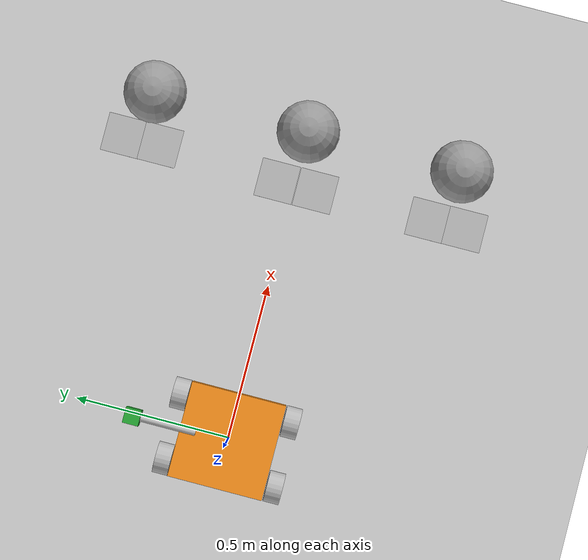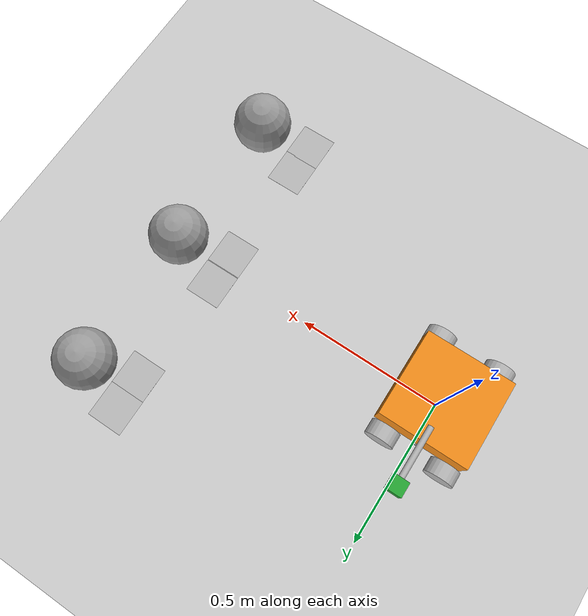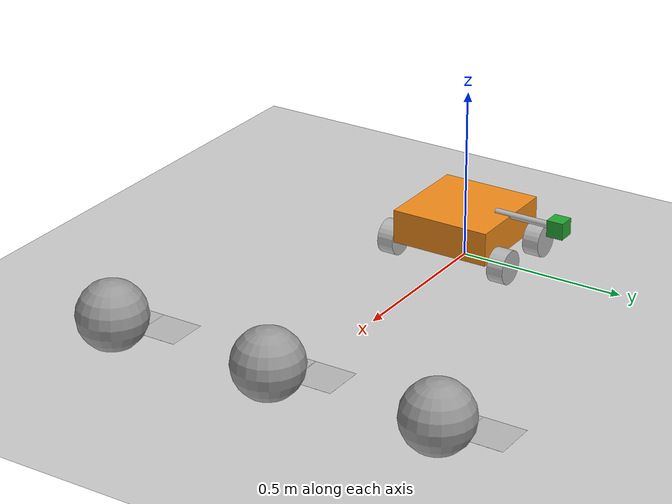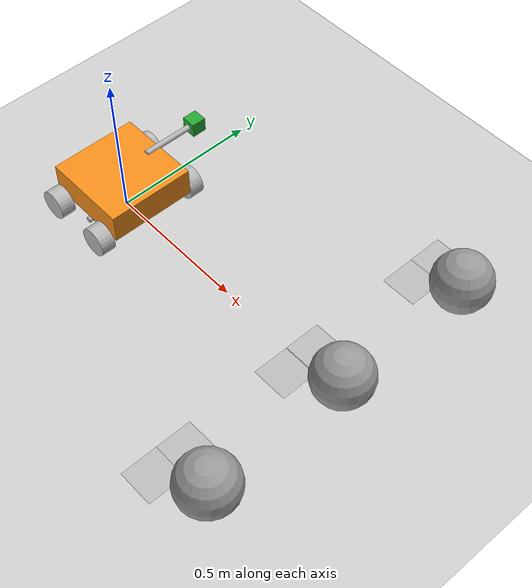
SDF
<sdf version="1.6">
 <world name="default">
  <model name="ground_plane">
   <static>1</static>
   <link name="link">
    <collision name="collision">
     <geometry><plane><normal>0 0 1</normal><size>100 100</size></plane></geometry>
     <surface><friction><ode><mu>100</mu><mu2>50</mu2></ode></friction></surface>
    </collision>
    <visual name="visual">
     <cast_shadows>0</cast_shadows>
     <geometry><plane><normal>0 0 1</normal><size>100 100</size></plane></geometry>
     <material>
      <script><uri>file://media/materials/scripts/gazebo.material</uri><name>Gazebo/Grey</name></script>
     </material>
    </visual>
   </link>
  </model>
  <light name="sun" type="directional">
   <pose>0 0 10 0 -0 0</pose>
   <diffuse>0.8 0.8 0.8 1</diffuse>
   <specular>0.1 0.1 0.1 1</specular>
   <attenuation>
    <range>1000</range>
    <constant>0.9</constant>
    <linear>0.01</linear>
    <quadratic>0.001</quadratic>
   </attenuation>
   <direction>-0.5 0.5 -1</direction>
  </light>
  <gravity>0 0 -9.8</gravity>
  <magnetic_field>6e-06 2.3e-05 -4.2e-05</magnetic_field>
  <atmosphere type="adiabatic"/>
  <physics name="default_physics" default="0" type="ode">
   <max_step_size>0.001</max_step_size>
   <real_time_factor>1</real_time_factor>
   <real_time_update_rate>1000</real_time_update_rate>
  </physics>
  <scene><ambient>0.4 0.4 0.4 1</ambient><background>0.7 0.7 0.7 1</background><shadows>1</shadows></scene>
  <spherical_coordinates>
   <surface_model>EARTH_WGS84</surface_model>
   <latitude_deg>0</latitude_deg>
   <longitude_deg>0</longitude_deg>
   <elevation>0</elevation>
   <heading_deg>0</heading_deg>
  </spherical_coordinates>
  <model name="mybot">
   <link name="chassis">
    <inertial>
     <pose>0 0.018438 0.063669 0 -0 0</pose>
     <mass>11.01</mass>
     <inertia>
      <ixx>1.05763</ixx>
      <ixy>0</ixy>
      <ixz>0</ixz>
      <iyy>2.02047</iyy>
      <iyz>-0.0273751</iyz>
      <izz>0.237158</izz>
     </inertia>
    </inertial>
    <collision name="chassis_fixed_joint_lump__collision_collision">
     <pose>0 0 0.05 0 -0 0</pose>
     <geometry><box><size>0.3 0.3 0.1</size></box></geometry>
    </collision>
    <collision name="chassis_fixed_joint_lump__collision_collision_1">
     <pose>0.1 0.2 0.1 3.14159 1.57079 3.14159</pose>
     <geometry><cylinder><length>0.2</length><radius>0.01</radius></cylinder></geometry>
    </collision>
    <collision name="chassis_fixed_joint_lump__camera_collision_2">
     <pose>0 0.3 0.1 3.14159 1.57079 -1.57079</pose>
     <geometry><box><size>0.05 0.05 0.05</size></box></geometry>
    </collision>
    <visual name="chassis_visual_visual">
     <pose>0 0 0.05 0 -0 0</pose>
     <geometry><box><size>0.3 0.3 0.1</size></box></geometry>
     <material>
      <script><name>Gazebo/Orange</name><uri>file://media/materials/scripts/gazebo.material</uri></script>
     </material>
    </visual>
    <visual name="chassis_fixed_joint_lump__camera_pole_visual_1">
     <pose>0 0.2 0.1 1.57075 -0 0</pose>
     <geometry><cylinder><length>0.2</length><radius>0.01</radius></cylinder></geometry>
    </visual>
    <visual name="chassis_fixed_joint_lump__camera_visual_2">
     <pose>0 0.3 0.1 3.14159 1.57079 -1.57079</pose>
     <geometry><box><size>0.05 0.05 0.05</size></box></geometry>
     <material>
      <script><name>Gazebo/Green</name><uri>file://media/materials/scripts/gazebo.material</uri></script>
     </material>
    </visual>
    <sensor name="camera1" type="camera">
     <update_rate>30</update_rate>
     <camera name="chassis">
      <horizontal_fov>1.39626</horizontal_fov>
      <image><width>800</width><height>800</height><format>R8G8B8</format></image>
      <clip><near>0.02</near><far>300</far></clip>
     </camera>
     <plugin name="camera_controller" filename="libgazebo_ros_camera.so">
      <alwaysOn>true</alwaysOn>
      <updateRate>0.0</updateRate>
      <cameraName>mybot/camera1</cameraName>
      <imageTopicName>image_raw</imageTopicName>
      <cameraInfoTopicName>camera_info</cameraInfoTopicName>
      <frameName>camera</frameName>
      <hackBaseline>0.07</hackBaseline>
      <distortionK1>0.0</distortionK1>
      <distortionK2>0.0</distortionK2>
      <distortionK3>0.0</distortionK3>
      <distortionT1>0.0</distortionT1>
      <distortionT2>0.0</distortionT2>
      <robotNamespace>/mybot/</robotNamespace>
     </plugin>
     <pose>0 0.3 0.1 3.14159 1.57079 -1.57079</pose>
    </sensor>
   </link>
   <link name="gripper_pole">
    <pose>0 0 -0.03 0 -0 0</pose>
    <inertial>
     <pose>0 0 0.1 0 1.57075 0</pose>
     <mass>5</mass>
     <inertia><ixx>0.5</ixx><ixy>0</ixy><ixz>0</ixz><iyy>1</iyy><iyz>0</iyz><izz>0.1</izz></inertia>
    </inertial>
    <collision name="gripper_pole_fixed_joint_lump__collision_collision">
     <pose>0 0 0 1.57075 -0 0</pose>
     <geometry><cylinder><length>0.3</length><radius>0.01</radius></cylinder></geometry>
    </collision>
    <visual name="gripper_pole_visual">
     <pose>0 0 0 1.57075 -0 0</pose>
     <geometry><cylinder><length>0.3</length><radius>0.01</radius></cylinder></geometry>
    </visual>
   </link>
   <joint name="gripper_extension" type="prismatic">
    <child>gripper_pole</child>
    <parent>chassis</parent>
    <axis>
     <xyz>0 1 0</xyz>
     <limit><lower>0</lower><upper>0.3</upper><effort>1000</effort><velocity>10</velocity></limit>
     <dynamics><spring_reference>0</spring_reference><spring_stiffness>0</spring_stiffness></dynamics>
     <use_parent_model_frame>1</use_parent_model_frame>
    </axis>
   </joint>
   <link name="left_back_wheel">
    <pose>-0.11 0.18 -0.01 0 -0 0</pose>
    <inertial>
     <pose>0 0 0 -0 1.5707 1.5707</pose>
     <mass>5</mass>
     <inertia><ixx>1</ixx><ixy>0</ixy><ixz>0</ixz><iyy>1</iyy><iyz>0</iyz><izz>1</izz></inertia>
    </inertial>
    <collision name="left_back_wheel_fixed_joint_lump__collision_collision">
     <pose>0 0 0 3.14159 1.57079 -1.57089</pose>
     <geometry><cylinder><length>0.05</length><radius>0.05</radius></cylinder></geometry>
    </collision>
    <visual name="left_back_wheel_fixed_joint_lump__left_wheel_visual_visual">
     <pose>0 0 0 3.14159 1.57079 -1.57089</pose>
     <geometry><cylinder><length>0.05</length><radius>0.05</radius></cylinder></geometry>
    </visual>
   </link>
   <joint name="left_back_wheel_hinge" type="revolute">
    <child>left_back_wheel</child>
    <parent>chassis</parent>
    <axis>
     <xyz>0 1 0</xyz>
     <limit><lower>-1e+16</lower><upper>1e+16</upper></limit>
     <dynamics><spring_reference>0</spring_reference><spring_stiffness>0</spring_stiffness></dynamics>
     <use_parent_model_frame>1</use_parent_model_frame>
    </axis>
   </joint>
   <link name="left_wheel">
    <pose>0.1 0.18 -0.01 0 -0 0</pose>
    <inertial>
     <pose>0 0 0 -0 1.5707 1.5707</pose>
     <mass>5</mass>
     <inertia><ixx>1</ixx><ixy>0</ixy><ixz>0</ixz><iyy>1</iyy><iyz>0</iyz><izz>1</izz></inertia>
    </inertial>
    <collision name="left_wheel_fixed_joint_lump__collision_collision">
     <pose>0 0 0 3.14159 1.57079 -1.57089</pose>
     <geometry><cylinder><length>0.05</length><radius>0.05</radius></cylinder></geometry>
    </collision>
    <visual name="left_wheel_visual_visual">
     <pose>0 0 0 3.14159 1.57079 -1.57089</pose>
     <geometry><cylinder><length>0.05</length><radius>0.05</radius></cylinder></geometry>
    </visual>
   </link>
   <joint name="left_wheel_hinge" type="revolute">
    <child>left_wheel</child>
    <parent>chassis</parent>
    <axis>
     <xyz>0 1 0</xyz>
     <limit><lower>-1e+16</lower><upper>1e+16</upper></limit>
     <dynamics><spring_reference>0</spring_reference><spring_stiffness>0</spring_stiffness></dynamics>
     <use_parent_model_frame>1</use_parent_model_frame>
    </axis>
   </joint>
   <link name="right_back_wheel">
    <pose>-0.11 -0.18 -0.01 0 -0 0</pose>
    <inertial>
     <pose>0 0 0 -0 1.5707 1.5707</pose>
     <mass>5</mass>
     <inertia><ixx>1</ixx><ixy>0</ixy><ixz>0</ixz><iyy>1</iyy><iyz>0</iyz><izz>1</izz></inertia>
    </inertial>
    <collision name="right_back_wheel_fixed_joint_lump__collision_collision">
     <pose>0 0 0 3.14159 1.57079 -1.57089</pose>
     <geometry><cylinder><length>0.05</length><radius>0.05</radius></cylinder></geometry>
    </collision>
    <visual name="right_back_wheel_fixed_joint_lump__right_wheel_visual_visual">
     <pose>0 0 0 3.14159 1.57079 -1.57089</pose>
     <geometry><cylinder><length>0.05</length><radius>0.05</radius></cylinder></geometry>
    </visual>
   </link>
   <joint name="right_back_wheel_hinge" type="revolute">
    <child>right_back_wheel</child>
    <parent>chassis</parent>
    <axis>
     <xyz>0 1 0</xyz>
     <limit><lower>-1e+16</lower><upper>1e+16</upper></limit>
     <dynamics><spring_reference>0</spring_reference><spring_stiffness>0</spring_stiffness></dynamics>
     <use_parent_model_frame>1</use_parent_model_frame>
    </axis>
   </joint>
   <link name="right_wheel">
    <pose>0.1 -0.18 -0.01 0 -0 0</pose>
    <inertial>
     <pose>0 0 0 -0 1.5707 1.5707</pose>
     <mass>5</mass>
     <inertia><ixx>1</ixx><ixy>0</ixy><ixz>0</ixz><iyy>1</iyy><iyz>0</iyz><izz>1</izz></inertia>
    </inertial>
    <collision name="right_wheel_fixed_joint_lump__collision_collision">
     <pose>0 0 0 3.14159 1.57079 -1.57089</pose>
     <geometry><cylinder><length>0.05</length><radius>0.05</radius></cylinder></geometry>
    </collision>
    <visual name="right_wheel_visual_visual">
     <pose>0 0 0 3.14159 1.57079 -1.57089</pose>
     <geometry><cylinder><length>0.05</length><radius>0.05</radius></cylinder></geometry>
    </visual>
   </link>
   <joint name="right_wheel_hinge" type="revolute">
    <child>right_wheel</child>
    <parent>chassis</parent>
    <axis>
     <xyz>0 1 0</xyz>
     <limit><lower>-1e+16</lower><upper>1e+16</upper></limit>
     <dynamics><spring_reference>0</spring_reference><spring_stiffness>0</spring_stiffness></dynamics>
     <use_parent_model_frame>1</use_parent_model_frame>
    </axis>
   </joint>
   <plugin name="gazebo_ros_control" filename="libgazebo_ros_control.so">
    <robotNamespace>/mybot</robotNamespace>
    <robotSimType>gazebo_ros_control/DefaultRobotHWSim</robotSimType>
    <legacyModeNS>true</legacyModeNS>
   </plugin>
   <static>0</static>
   <plugin name="differential_drive_controller" filename="libgazebo_ros_diff_drive.so">
    <legacyMode>false</legacyMode>
    <alwaysOn>true</alwaysOn>
    <updateRate>20</updateRate>
    <leftJoint>left_wheel_hinge</leftJoint>
    <rightJoint>right_wheel_hinge</rightJoint>
    <wheelDiameter>0.1</wheelDiameter>
    <torque>20</torque>
    <commandTopic>cmd_vel</commandTopic>
    <odometryTopic>odom</odometryTopic>
    <odometryFrame>odom</odometryFrame>
    <robotBaseFrame>chassis</robotBaseFrame>
    <robotNamespace>/mybot/</robotNamespace>
   </plugin>
   <pose>-5.6e-05 7e-06 0.059999 5e-06 -2e-06 -0.000208</pose>
  </model>
  <model name="unit_sphere_1_0">
   <link name="link">
    <inertial>
     <mass>1</mass>
     <inertia><ixx>0.1</ixx><ixy>0</ixy><ixz>0</ixz><iyy>0.1</iyy><iyz>0</iyz><izz>0.1</izz></inertia>
    </inertial>
    <visual name="visual">
     <geometry><sphere><radius>0.1</radius></sphere></geometry>
     <material>
      <script><name>Gazebo/Grey</name><uri>file://media/materials/scripts/gazebo.material</uri></script>
      <ambient>0.3 0.3 0.3 1</ambient>
      <diffuse>0.7 0.7 0.7 1</diffuse>
      <specular>0.01 0.01 0.01 1</specular>
      <emissive>0 0 0 1</emissive>
      <shader type="vertex"><normal_map>__default__</normal_map></shader>
     </material>
    </visual>
    <collision name="collision">
     <geometry><sphere><radius>0.1</radius></sphere></geometry>
     <surface>
      <friction>
       <ode><mu>1</mu><mu2>1</mu2><fdir1>0 0 0</fdir1><slip1>0</slip1><slip2>0</slip2></ode>
       <torsional>
        <coefficient>1</coefficient>
        <patch_radius>0</patch_radius>
        <surface_radius>0</surface_radius>
        <use_patch_radius>1</use_patch_radius>
        <ode><slip>0</slip></ode>
       </torsional>
      </friction>
      <bounce><restitution_coefficient>0.8</restitution_coefficient><threshold>0</threshold></bounce>
      <contact>
       <collide_without_contact>0</collide_without_contact>
       <collide_without_contact_bitmask>1</collide_without_contact_bitmask>
       <collide_bitmask>1</collide_bitmask>
       <ode>
        <soft_cfm>0</soft_cfm>
        <soft_erp>0.2</soft_erp>
        <kp>1e+13</kp>
        <kd>1</kd>
        <max_vel>10.05</max_vel>
        <min_depth>0</min_depth>
       </ode>
       <bullet>
        <split_impulse>1</split_impulse>
        <split_impulse_penetration_threshold>-0.01</split_impulse_penetration_threshold>
        <soft_cfm>0</soft_cfm>
        <soft_erp>0.2</soft_erp>
        <kp>1e+13</kp>
        <kd>1</kd>
       </bullet>
      </contact>
     </surface>
    </collision>
   </link>
   <static>0</static>
   <pose>1 0.5 0.1 0 -0 0</pose>
  </model>
  <model name="unit_sphere_1_1">
   <link name="link">
    <inertial>
     <mass>1</mass>
     <inertia><ixx>0.1</ixx><ixy>0</ixy><ixz>0</ixz><iyy>0.1</iyy><iyz>0</iyz><izz>0.1</izz></inertia>
    </inertial>
    <visual name="visual">
     <geometry><sphere><radius>0.1</radius></sphere></geometry>
     <material>
      <script><name>Gazebo/Grey</name><uri>file://media/materials/scripts/gazebo.material</uri></script>
      <ambient>0.3 0.3 0.3 1</ambient>
      <diffuse>0.7 0.7 0.7 1</diffuse>
      <specular>0.01 0.01 0.01 1</specular>
      <emissive>0 0 0 1</emissive>
      <shader type="vertex"><normal_map>__default__</normal_map></shader>
     </material>
    </visual>
    <collision name="collision">
     <geometry><sphere><radius>0.1</radius></sphere></geometry>
     <surface>
      <friction>
       <ode><mu>1</mu><mu2>1</mu2><fdir1>0 0 0</fdir1><slip1>0</slip1><slip2>0</slip2></ode>
       <torsional>
        <coefficient>1</coefficient>
        <patch_radius>0</patch_radius>
        <surface_radius>0</surface_radius>
        <use_patch_radius>1</use_patch_radius>
        <ode><slip>0</slip></ode>
       </torsional>
      </friction>
      <bounce><restitution_coefficient>0.8</restitution_coefficient><threshold>0</threshold></bounce>
      <contact>
       <collide_without_contact>0</collide_without_contact>
       <collide_without_contact_bitmask>1</collide_without_contact_bitmask>
       <collide_bitmask>1</collide_bitmask>
       <ode>
        <soft_cfm>0</soft_cfm>
        <soft_erp>0.2</soft_erp>
        <kp>1e+13</kp>
        <kd>1</kd>
        <max_vel>10.05</max_vel>
        <min_depth>0</min_depth>
       </ode>
       <bullet>
        <split_impulse>1</split_impulse>
        <split_impulse_penetration_threshold>-0.01</split_impulse_penetration_threshold>
        <soft_cfm>0</soft_cfm>
        <soft_erp>0.2</soft_erp>
        <kp>1e+13</kp>
        <kd>1</kd>
       </bullet>
      </contact>
     </surface>
    </collision>
   </link>
   <static>0</static>
   <pose>1 0 0.1 0 -0 0</pose>
  </model>
  <model name="unit_sphere_1_2">
   <link name="link">
    <inertial>
     <mass>1</mass>
     <inertia><ixx>0.1</ixx><ixy>0</ixy><ixz>0</ixz><iyy>0.1</iyy><iyz>0</iyz><izz>0.1</izz></inertia>
    </inertial>
    <visual name="visual">
     <geometry><sphere><radius>0.1</radius></sphere></geometry>
     <material>
      <script><name>Gazebo/Grey</name><uri>file://media/materials/scripts/gazebo.material</uri></script>
      <ambient>0.3 0.3 0.3 1</ambient>
      <diffuse>0.7 0.7 0.7 1</diffuse>
      <specular>0.01 0.01 0.01 1</specular>
      <emissive>0 0 0 1</emissive>
      <shader type="vertex"><normal_map>__default__</normal_map></shader>
     </material>
    </visual>
    <collision name="collision">
     <geometry><sphere><radius>0.1</radius></sphere></geometry>
     <surface>
      <friction>
       <ode><mu>1</mu><mu2>1</mu2><fdir1>0 0 0</fdir1><slip1>0</slip1><slip2>0</slip2></ode>
       <torsional>
        <coefficient>1</coefficient>
        <patch_radius>0</patch_radius>
        <surface_radius>0</surface_radius>
        <use_patch_radius>1</use_patch_radius>
        <ode><slip>0</slip></ode>
       </torsional>
      </friction>
      <bounce><restitution_coefficient>0.8</restitution_coefficient><threshold>0</threshold></bounce>
      <contact>
       <collide_without_contact>0</collide_without_contact>
       <collide_without_contact_bitmask>1</collide_without_contact_bitmask>
       <collide_bitmask>1</collide_bitmask>
       <ode>
        <soft_cfm>0</soft_cfm>
        <soft_erp>0.2</soft_erp>
        <kp>1e+13</kp>
        <kd>1</kd>
        <max_vel>10.05</max_vel>
        <min_depth>0</min_depth>
       </ode>
       <bullet>
        <split_impulse>1</split_impulse>
        <split_impulse_penetration_threshold>-0.01</split_impulse_penetration_threshold>
        <soft_cfm>0</soft_cfm>
        <soft_erp>0.2</soft_erp>
        <kp>1e+13</kp>
        <kd>1</kd>
       </bullet>
      </contact>
     </surface>
    </collision>
   </link>
   <static>0</static>
   <pose>1 -0.5 0.1 0 -0 0</pose>
  </model>
  <model name="one">
   <static>1</static>
   <link name="link">
    <pose>0 0 1e-05 0 0 -1.57</pose>
    <collision name="collision">
     <geometry><plane><normal>0 0 1</normal><size>1 1</size></plane></geometry>
     <surface><friction><ode><mu>0.8</mu><mu2>0.5</mu2></ode></friction></surface>
    </collision>
    <visual name="visual">
     <geometry><plane><normal>0 0 1</normal><size>0.125 0.125</size></plane></geometry>
     <material>
      <script><uri>model://one/materials/scripts/one.material</uri><name>BYU1/ground</name></script>
     </material>
    </visual>
   </link>
   <pose>0.837081 -0.564032 0 0 -0 0</pose>
  </model>
  <model name="by">
   <static>1</static>
   <link name="link">
    <pose>0 0 1e-05 0 0 -1.57</pose>
    <collision name="collision">
     <geometry><plane><normal>0 0 1</normal><size>1 1</size></plane></geometry>
     <surface><friction><ode><mu>0.8</mu><mu2>0.5</mu2></ode></friction></surface>
    </collision>
    <visual name="visual">
     <cast_shadows>0</cast_shadows>
     <geometry><plane><normal>0 0 1</normal><size>0.125 0.125</size></plane></geometry>
     <material>
      <script><uri>model://by/materials/scripts/by.material</uri><name>BY/ground</name></script>
     </material>
    </visual>
   </link>
   <pose>0.83653 -0.44172 0 0 -0 0</pose>
  </model>
  <model name="two">
   <static>1</static>
   <link name="link">
    <pose>0 0 1e-05 0 0 -1.57</pose>
    <collision name="collision">
     <geometry><plane><normal>0 0 1</normal><size>1 1</size></plane></geometry>
     <surface><friction><ode><mu>0.8</mu><mu2>0.5</mu2></ode></friction></surface>
    </collision>
    <visual name="visual">
     <geometry><plane><normal>0 0 1</normal><size>0.125 0.125</size></plane></geometry>
     <material>
      <script><uri>model://two/materials/scripts/two.material</uri><name>BYU2/ground</name></script>
     </material>
    </visual>
   </link>
   <pose>0.835759 -0.068956 0 0 -0 0</pose>
  </model>
  <model name="three">
   <static>1</static>
   <link name="link">
    <pose>0 0 1e-05 0 0 -1.57</pose>
    <collision name="collision">
     <geometry><plane><normal>0 0 1</normal><size>1 1</size></plane></geometry>
     <surface><friction><ode><mu>0.8</mu><mu2>0.5</mu2></ode></friction></surface>
    </collision>
    <visual name="visual">
     <geometry><plane><normal>0 0 1</normal><size>0.125 0.125</size></plane></geometry>
     <material>
      <script><uri>model://three/materials/scripts/three.material</uri><name>BYU3/ground</name></script>
     </material>
    </visual>
   </link>
   <pose>0.835665 0.058446 0 0 -0 0</pose>
  </model>
  <model name="byu">
   <static>1</static>
   <link name="link">
    <pose>0 0 1e-05 0 0 -1.57</pose>
    <collision name="collision">
     <geometry><plane><normal>0 0 1</normal><size>1 1</size></plane></geometry>
     <surface><friction><ode><mu>0.8</mu><mu2>0.5</mu2></ode></friction></surface>
    </collision>
    <visual name="visual">
     <geometry><plane><normal>0 0 1</normal><size>0.125 0.125</size></plane></geometry>
     <material>
      <script><uri>model://byu/materials/scripts/byu.material</uri><name>BYU/ground</name></script>
     </material>
    </visual>
   </link>
   <pose>0.853574 0.451578 0 0 -0 0</pose>
  </model>
  <model name="four">
   <static>1</static>
   <link name="link">
    <pose>0 0 1e-05 0 0 -1.57</pose>
    <collision name="collision">
     <geometry><plane><normal>0 0 1</normal><size>1 1</size></plane></geometry>
     <surface><friction><ode><mu>0.8</mu><mu2>0.5</mu2></ode></friction></surface>
    </collision>
    <visual name="visual">
     <geometry><plane><normal>0 0 1</normal><size>0.125 0.125</size></plane></geometry>
     <material>
      <script><uri>model://four/materials/scripts/four.material</uri><name>BYU4/ground</name></script>
     </material>
    </visual>
   </link>
   <pose>0.852941 0.574057 0 0 -0 0</pose>
  </model>
 </world>
</sdf>
